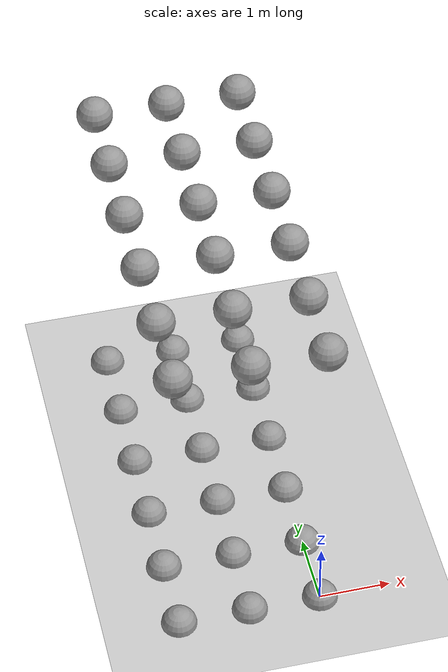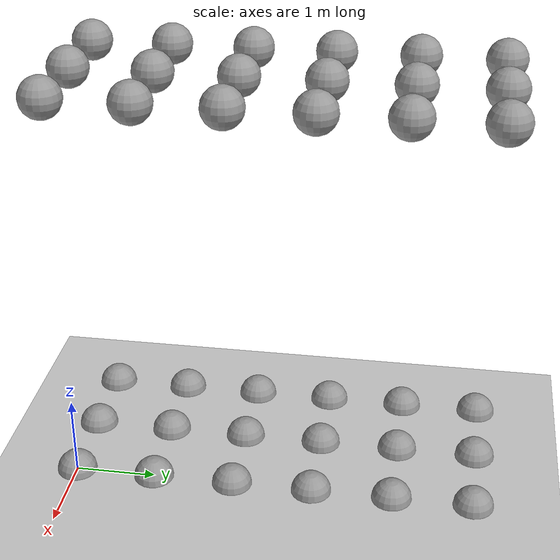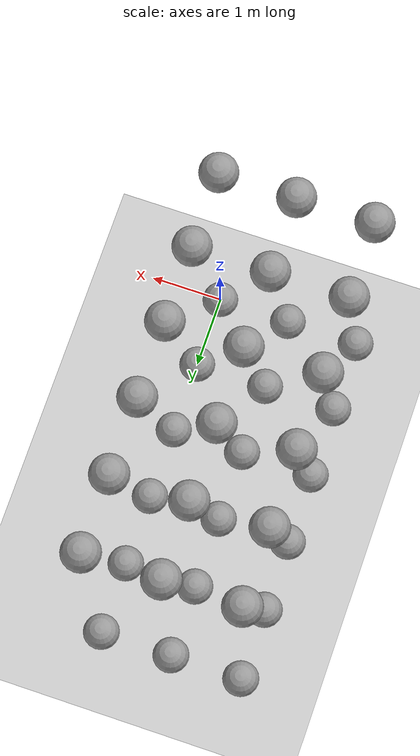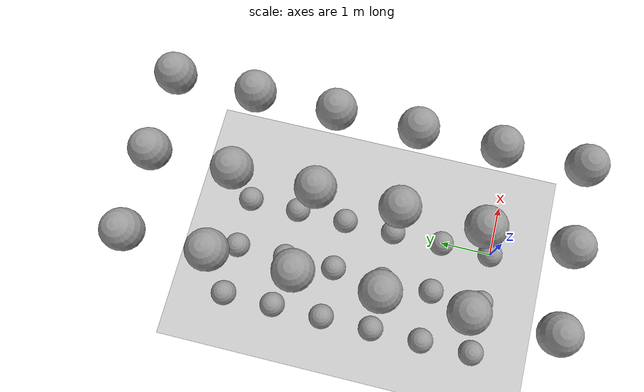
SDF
<?xml version="1.0" ?>
<sdf version="1.4">
  <world name="default">
    <gui fullscreen='0'>
      <camera name='user_camera'>
        <pose>-30 0 0 0 0 0</pose>
      </camera>
    </gui>
    <scene>
      <ambient>0.5 0.5 0.5 1</ambient>
      <background>0.5 0.5 0.5 1</background>
      <shadows>false</shadows>
    </scene>
    <include>
      <uri>model://sun</uri>
    </include>
    <include>
      <uri>model://ground_plane</uri>
    </include>
    <physics type="ode">
      <gravity>0.0 0.0 -6.0</gravity>
      <ode>
        <solver>
          <type>quick</type>
          <iters>50</iters>
          <sor>1.0</sor>
        </solver>
        <constraints>
          <cfm>0.0</cfm>
          <erp>1.0</erp>
          <contact_max_correcting_vel>1000000.0</contact_max_correcting_vel>
          <contact_surface_layer>0.0</contact_surface_layer>
        </constraints>
      </ode>
      <real_time_update_rate>1000.0</real_time_update_rate>
      <max_step_size>0.001</max_step_size>
    </physics>
    <model name="model_max_vel_test">
      <pose>0.0 0.0 0.0 0 0.0 0.0</pose>
      <static>false</static>
      <allow_auto_disable>false</allow_auto_disable>

      <!-- this link has zero max_vel -->
      <link name="link_0">
        <velocity_decay>
          <linear>0.0</linear>
          <angular>0.0</angular>
        </velocity_decay>
        <pose>0.0 0.0 0.0 0.0 0.0 0.0</pose>
        <inertial>
          <pose>0.0 0.0 0.0 0.0 0.0 0.0</pose>
          <inertia>
            <ixx>0.01</ixx>
            <ixy>0.0</ixy>
            <ixz>0.0</ixz>
            <iyy>0.01</iyy>
            <iyz>0.0</iyz>
            <izz>0.01</izz>
          </inertia>
          <mass>10.0</mass>
        </inertial>
        <visual name="visual_sphere">
          <pose>0.0 0.0 0.0 0.0 0.0 0.0</pose>
          <geometry>
            <sphere>
              <radius>0.25</radius>
            </sphere>
          </geometry>
          <material>
            <script><uri>file://media/materials/scripts/gazebo.material</uri><name>Gazebo/Grey</name></script>
          </material>
        </visual>
        <visual name="visual_sphere_2">
          <pose>0.0 0.0 5.0 0.0 0.0 0.0</pose>
          <geometry>
            <sphere>
              <radius>0.25</radius>
            </sphere>
          </geometry>
          <material>
            <script><uri>file://media/materials/scripts/gazebo.material</uri><name>Gazebo/Grey</name></script>
          </material>
        </visual>
        <collision name="collision_sphere">
          <pose>0.0 0.0 0.0 0.0 0.0 0.0</pose>
          <max_contacts>250</max_contacts>
          <geometry>
            <sphere>
              <radius>0.25</radius>
            </sphere>
          </geometry>
          <surface>
            <contact>
              <ode>
                <max_vel>0.0</max_vel>
                <min_depth>0.0</min_depth>
                <kp>40000.0</kp>
                <kd>1.0</kd>
              </ode>
            </contact>
          </surface>
        </collision>
        <gravity>true</gravity>
        <self_collide>true</self_collide>
        <kinematic>false</kinematic>
      </link>

      <link name="link_1">
        <velocity_decay>
          <linear>0.0</linear>
          <angular>0.0</angular>
        </velocity_decay>
        <pose>0.0 1.0 0.0 0.0 0.0 0.0</pose>
        <inertial>
          <pose>0.0 0.0 0.0 0.0 0.0 0.0</pose>
          <inertia>
            <ixx>0.01</ixx>
            <ixy>0.0</ixy>
            <ixz>0.0</ixz>
            <iyy>0.01</iyy>
            <iyz>0.0</iyz>
            <izz>0.01</izz>
          </inertia>
          <mass>10.0</mass>
        </inertial>
        <visual name="visual_sphere">
          <pose>0.0 0.0 0.0 0.0 0.0 0.0</pose>
          <geometry>
            <sphere>
              <radius>0.25</radius>
            </sphere>
          </geometry>
          <material>
            <script><uri>file://media/materials/scripts/gazebo.material</uri><name>Gazebo/Grey</name></script>
          </material>
        </visual>
        <visual name="visual_sphere_2">
          <pose>0.0 0.0 5.0 0.0 0.0 0.0</pose>
          <geometry>
            <sphere>
              <radius>0.25</radius>
            </sphere>
          </geometry>
          <material>
            <script><uri>file://media/materials/scripts/gazebo.material</uri><name>Gazebo/Grey</name></script>
          </material>
        </visual>
        <collision name="collision_sphere">
          <pose>0.0 0.0 0.0 0.0 0.0 0.0</pose>
          <max_contacts>250</max_contacts>
          <geometry>
            <sphere>
              <radius>0.25</radius>
            </sphere>
          </geometry>
          <surface>
            <contact>
              <ode>
                <max_vel>1.0</max_vel>
                <min_depth>0.0</min_depth>
                <kp>40000.0</kp>
                <kd>1.0</kd>
              </ode>
            </contact>
          </surface>
        </collision>
        <gravity>true</gravity>
        <self_collide>true</self_collide>
        <kinematic>false</kinematic>
      </link>

      <!-- max_vel is 2, model should shoot out from interpenetration with maximum velocity of 2.0 -->
      <link name="link_2">
        <velocity_decay>
          <linear>0.0</linear>
          <angular>0.0</angular>
        </velocity_decay>
        <pose>0.0 2.0 0.0 0.0 0.0 0.0</pose>
        <inertial>
          <pose>0.0 0.0 0.0 0.0 0.0 0.0</pose>
          <inertia>
            <ixx>0.01</ixx>
            <ixy>0.0</ixy>
            <ixz>0.0</ixz>
            <iyy>0.01</iyy>
            <iyz>0.0</iyz>
            <izz>0.01</izz>
          </inertia>
          <mass>10.0</mass>
        </inertial>
        <visual name="visual_sphere">
          <pose>0.0 0.0 0.0 0.0 0.0 0.0</pose>
          <geometry>
            <sphere>
              <radius>0.25</radius>
            </sphere>
          </geometry>
          <material>
            <script><uri>file://media/materials/scripts/gazebo.material</uri><name>Gazebo/Grey</name></script>
          </material>
        </visual>
        <visual name="visual_sphere_2">
          <pose>0.0 0.0 5.0 0.0 0.0 0.0</pose>
          <geometry>
            <sphere>
              <radius>0.25</radius>
            </sphere>
          </geometry>
          <material>
            <script><uri>file://media/materials/scripts/gazebo.material</uri><name>Gazebo/Grey</name></script>
          </material>
        </visual>
        <collision name="collision_sphere">
          <pose>0.0 0.0 0.0 0.0 0.0 0.0</pose>
          <max_contacts>250</max_contacts>
          <geometry>
            <sphere>
              <radius>0.25</radius>
            </sphere>
          </geometry>
          <surface>
            <contact>
              <ode>
                <max_vel>2.0</max_vel>
                <min_depth>0.0</min_depth>
                <kp>40000.0</kp>
                <kd>1.0</kd>
              </ode>
            </contact>
          </surface>
        </collision>
        <gravity>true</gravity>
        <self_collide>true</self_collide>
        <kinematic>false</kinematic>
      </link>

      <!-- max_vel is 3, model should shoot out from interpenetration with maximum velocity of 3.0 -->
      <link name="link_3">
        <velocity_decay>
          <linear>0.0</linear>
          <angular>0.0</angular>
        </velocity_decay>
        <pose>0.0 3.0 0.0 0.0 0.0 0.0</pose>
        <inertial>
          <pose>0.0 0.0 0.0 0.0 0.0 0.0</pose>
          <inertia>
            <ixx>0.01</ixx>
            <ixy>0.0</ixy>
            <ixz>0.0</ixz>
            <iyy>0.01</iyy>
            <iyz>0.0</iyz>
            <izz>0.01</izz>
          </inertia>
          <mass>10.0</mass>
        </inertial>
        <visual name="visual_sphere">
          <pose>0.0 0.0 0.0 0.0 0.0 0.0</pose>
          <geometry>
            <sphere>
              <radius>0.25</radius>
            </sphere>
          </geometry>
          <material>
            <script><uri>file://media/materials/scripts/gazebo.material</uri><name>Gazebo/Grey</name></script>
          </material>
        </visual>
        <visual name="visual_sphere_2">
          <pose>0.0 0.0 5.0 0.0 0.0 0.0</pose>
          <geometry>
            <sphere>
              <radius>0.25</radius>
            </sphere>
          </geometry>
          <material>
            <script><uri>file://media/materials/scripts/gazebo.material</uri><name>Gazebo/Grey</name></script>
          </material>
        </visual>
        <collision name="collision_sphere">
          <pose>0.0 0.0 0.0 0.0 0.0 0.0</pose>
          <max_contacts>250</max_contacts>
          <geometry>
            <sphere>
              <radius>0.25</radius>
            </sphere>
          </geometry>
          <surface>
            <contact>
              <ode>
                <max_vel>3.0</max_vel>
                <min_depth>0.0</min_depth>
                <kp>40000.0</kp>
                <kd>1.0</kd>
              </ode>
            </contact>
          </surface>
        </collision>
        <gravity>true</gravity>
        <self_collide>true</self_collide>
        <kinematic>false</kinematic>
      </link>

      <!-- max_vel is 4, model should shoot out from interpenetration with maximum velocity of 4.0 -->
      <link name="link_4">
        <velocity_decay>
          <linear>0.0</linear>
          <angular>0.0</angular>
        </velocity_decay>
        <pose>0.0 4.0 0.0 0.0 0.0 0.0</pose>
        <inertial>
          <pose>0.0 0.0 0.0 0.0 0.0 0.0</pose>
          <inertia>
            <ixx>0.01</ixx>
            <ixy>0.0</ixy>
            <ixz>0.0</ixz>
            <iyy>0.01</iyy>
            <iyz>0.0</iyz>
            <izz>0.01</izz>
          </inertia>
          <mass>10.0</mass>
        </inertial>
        <visual name="visual_sphere">
          <pose>0.0 0.0 0.0 0.0 0.0 0.0</pose>
          <geometry>
            <sphere>
              <radius>0.25</radius>
            </sphere>
          </geometry>
          <material>
            <script><uri>file://media/materials/scripts/gazebo.material</uri><name>Gazebo/Grey</name></script>
          </material>
        </visual>
        <visual name="visual_sphere_2">
          <pose>0.0 0.0 5.0 0.0 0.0 0.0</pose>
          <geometry>
            <sphere>
              <radius>0.25</radius>
            </sphere>
          </geometry>
          <material>
            <script><uri>file://media/materials/scripts/gazebo.material</uri><name>Gazebo/Grey</name></script>
          </material>
        </visual>
        <collision name="collision_sphere">
          <pose>0.0 0.0 0.0 0.0 0.0 0.0</pose>
          <max_contacts>250</max_contacts>
          <geometry>
            <sphere>
              <radius>0.25</radius>
            </sphere>
          </geometry>
          <surface>
            <contact>
              <ode>
                <max_vel>4.0</max_vel>
                <min_depth>0.0</min_depth>
                <kp>40000.0</kp>
                <kd>1.0</kd>
              </ode>
            </contact>
          </surface>
        </collision>
        <gravity>true</gravity>
        <self_collide>true</self_collide>
        <kinematic>false</kinematic>
      </link>

      <!-- max_vel is 5, model should shoot out from interpenetration with maximum velocity of 5.0 -->
      <link name="link_5">
        <velocity_decay>
          <linear>0.0</linear>
          <angular>0.0</angular>
        </velocity_decay>
        <pose>0.0 5.0 0.0 0.0 0.0 0.0</pose>
        <inertial>
          <pose>0.0 0.0 0.0 0.0 0.0 0.0</pose>
          <inertia>
            <ixx>0.01</ixx>
            <ixy>0.0</ixy>
            <ixz>0.0</ixz>
            <iyy>0.01</iyy>
            <iyz>0.0</iyz>
            <izz>0.01</izz>
          </inertia>
          <mass>10.0</mass>
        </inertial>
        <visual name="visual_sphere">
          <pose>0.0 0.0 0.0 0.0 0.0 0.0</pose>
          <geometry>
            <sphere>
              <radius>0.25</radius>
            </sphere>
          </geometry>
          <material>
            <script><uri>file://media/materials/scripts/gazebo.material</uri><name>Gazebo/Grey</name></script>
          </material>
        </visual>
        <visual name="visual_sphere_2">
          <pose>0.0 0.0 5.0 0.0 0.0 0.0</pose>
          <geometry>
            <sphere>
              <radius>0.25</radius>
            </sphere>
          </geometry>
          <material>
            <script><uri>file://media/materials/scripts/gazebo.material</uri><name>Gazebo/Grey</name></script>
          </material>
        </visual>
        <collision name="collision_sphere">
          <pose>0.0 0.0 0.0 0.0 0.0 0.0</pose>
          <max_contacts>250</max_contacts>
          <geometry>
            <sphere>
              <radius>0.25</radius>
            </sphere>
          </geometry>
          <surface>
            <contact>
              <ode>
                <max_vel>5.0</max_vel>
                <min_depth>0.0</min_depth>
                <kp>40000.0</kp>
                <kd>1.0</kd>
              </ode>
            </contact>
          </surface>
        </collision>
        <gravity>true</gravity>
        <self_collide>true</self_collide>
        <kinematic>false</kinematic>
      </link>
    </model>

    <model name="model_max_vel_kp_test">
      <pose>-1.0 0.0 0.0 0 0.0 0.0</pose>
      <static>false</static>
      <allow_auto_disable>false</allow_auto_disable>

      <!-- this link has zero max_vel -->
      <link name="link_0">
        <velocity_decay>
          <linear>0.0</linear>
          <angular>0.0</angular>
        </velocity_decay>
        <pose>0.0 0.0 0.0 0.0 0.0 0.0</pose>
        <inertial>
          <pose>0.0 0.0 0.0 0.0 0.0 0.0</pose>
          <inertia>
            <ixx>0.01</ixx>
            <ixy>0.0</ixy>
            <ixz>0.0</ixz>
            <iyy>0.01</iyy>
            <iyz>0.0</iyz>
            <izz>0.01</izz>
          </inertia>
          <mass>10.0</mass>
        </inertial>
        <visual name="visual_sphere">
          <pose>0.0 0.0 0.0 0.0 0.0 0.0</pose>
          <geometry>
            <sphere>
              <radius>0.25</radius>
            </sphere>
          </geometry>
          <material>
            <script><uri>file://media/materials/scripts/gazebo.material</uri><name>Gazebo/Grey</name></script>
          </material>
        </visual>
        <visual name="visual_sphere_2">
          <pose>0.0 0.0 5.0 0.0 0.0 0.0</pose>
          <geometry>
            <sphere>
              <radius>0.25</radius>
            </sphere>
          </geometry>
          <material>
            <script><uri>file://media/materials/scripts/gazebo.material</uri><name>Gazebo/Grey</name></script>
          </material>
        </visual>
        <collision name="collision_sphere">
          <pose>0.0 0.0 0.0 0.0 0.0 0.0</pose>
          <max_contacts>250</max_contacts>
          <geometry>
            <sphere>
              <radius>0.25</radius>
            </sphere>
          </geometry>
          <surface>
            <contact>
              <ode>
                <max_vel>0.0</max_vel>
                <min_depth>0.0</min_depth>
                <kp>20000.0</kp>
                <kd>1.0</kd>
              </ode>
            </contact>
          </surface>
        </collision>
        <gravity>true</gravity>
        <self_collide>true</self_collide>
        <kinematic>false</kinematic>
      </link>

      <link name="link_1">
        <velocity_decay>
          <linear>0.0</linear>
          <angular>0.0</angular>
        </velocity_decay>
        <pose>0.0 1.0 0.0 0.0 0.0 0.0</pose>
        <inertial>
          <pose>0.0 0.0 0.0 0.0 0.0 0.0</pose>
          <inertia>
            <ixx>0.01</ixx>
            <ixy>0.0</ixy>
            <ixz>0.0</ixz>
            <iyy>0.01</iyy>
            <iyz>0.0</iyz>
            <izz>0.01</izz>
          </inertia>
          <mass>10.0</mass>
        </inertial>
        <visual name="visual_sphere">
          <pose>0.0 0.0 0.0 0.0 0.0 0.0</pose>
          <geometry>
            <sphere>
              <radius>0.25</radius>
            </sphere>
          </geometry>
          <material>
            <script><uri>file://media/materials/scripts/gazebo.material</uri><name>Gazebo/Grey</name></script>
          </material>
        </visual>
        <visual name="visual_sphere_2">
          <pose>0.0 0.0 5.0 0.0 0.0 0.0</pose>
          <geometry>
            <sphere>
              <radius>0.25</radius>
            </sphere>
          </geometry>
          <material>
            <script><uri>file://media/materials/scripts/gazebo.material</uri><name>Gazebo/Grey</name></script>
          </material>
        </visual>
        <collision name="collision_sphere">
          <pose>0.0 0.0 0.0 0.0 0.0 0.0</pose>
          <max_contacts>250</max_contacts>
          <geometry>
            <sphere>
              <radius>0.25</radius>
            </sphere>
          </geometry>
          <surface>
            <contact>
              <ode>
                <max_vel>1.0</max_vel>
                <min_depth>0.0</min_depth>
                <kp>20000.0</kp>
                <kd>1.0</kd>
              </ode>
            </contact>
          </surface>
        </collision>
        <gravity>true</gravity>
        <self_collide>true</self_collide>
        <kinematic>false</kinematic>
      </link>

      <!-- max_vel is 2, model should shoot out from interpenetration with maximum velocity of 2.0 -->
      <link name="link_2">
        <velocity_decay>
          <linear>0.0</linear>
          <angular>0.0</angular>
        </velocity_decay>
        <pose>0.0 2.0 0.0 0.0 0.0 0.0</pose>
        <inertial>
          <pose>0.0 0.0 0.0 0.0 0.0 0.0</pose>
          <inertia>
            <ixx>0.01</ixx>
            <ixy>0.0</ixy>
            <ixz>0.0</ixz>
            <iyy>0.01</iyy>
            <iyz>0.0</iyz>
            <izz>0.01</izz>
          </inertia>
          <mass>10.0</mass>
        </inertial>
        <visual name="visual_sphere">
          <pose>0.0 0.0 0.0 0.0 0.0 0.0</pose>
          <geometry>
            <sphere>
              <radius>0.25</radius>
            </sphere>
          </geometry>
          <material>
            <script><uri>file://media/materials/scripts/gazebo.material</uri><name>Gazebo/Grey</name></script>
          </material>
        </visual>
        <visual name="visual_sphere_2">
          <pose>0.0 0.0 5.0 0.0 0.0 0.0</pose>
          <geometry>
            <sphere>
              <radius>0.25</radius>
            </sphere>
          </geometry>
          <material>
            <script><uri>file://media/materials/scripts/gazebo.material</uri><name>Gazebo/Grey</name></script>
          </material>
        </visual>
        <collision name="collision_sphere">
          <pose>0.0 0.0 0.0 0.0 0.0 0.0</pose>
          <max_contacts>250</max_contacts>
          <geometry>
            <sphere>
              <radius>0.25</radius>
            </sphere>
          </geometry>
          <surface>
            <contact>
              <ode>
                <max_vel>2.0</max_vel>
                <min_depth>0.0</min_depth>
                <kp>20000.0</kp>
                <kd>1.0</kd>
              </ode>
            </contact>
          </surface>
        </collision>
        <gravity>true</gravity>
        <self_collide>true</self_collide>
        <kinematic>false</kinematic>
      </link>

      <!-- max_vel is 3, model should shoot out from interpenetration with maximum velocity of 3.0 -->
      <link name="link_3">
        <velocity_decay>
          <linear>0.0</linear>
          <angular>0.0</angular>
        </velocity_decay>
        <pose>0.0 3.0 0.0 0.0 0.0 0.0</pose>
        <inertial>
          <pose>0.0 0.0 0.0 0.0 0.0 0.0</pose>
          <inertia>
            <ixx>0.01</ixx>
            <ixy>0.0</ixy>
            <ixz>0.0</ixz>
            <iyy>0.01</iyy>
            <iyz>0.0</iyz>
            <izz>0.01</izz>
          </inertia>
          <mass>10.0</mass>
        </inertial>
        <visual name="visual_sphere">
          <pose>0.0 0.0 0.0 0.0 0.0 0.0</pose>
          <geometry>
            <sphere>
              <radius>0.25</radius>
            </sphere>
          </geometry>
          <material>
            <script><uri>file://media/materials/scripts/gazebo.material</uri><name>Gazebo/Grey</name></script>
          </material>
        </visual>
        <visual name="visual_sphere_2">
          <pose>0.0 0.0 5.0 0.0 0.0 0.0</pose>
          <geometry>
            <sphere>
              <radius>0.25</radius>
            </sphere>
          </geometry>
          <material>
            <script><uri>file://media/materials/scripts/gazebo.material</uri><name>Gazebo/Grey</name></script>
          </material>
        </visual>
        <collision name="collision_sphere">
          <pose>0.0 0.0 0.0 0.0 0.0 0.0</pose>
          <max_contacts>250</max_contacts>
          <geometry>
            <sphere>
              <radius>0.25</radius>
            </sphere>
          </geometry>
          <surface>
            <contact>
              <ode>
                <max_vel>3.0</max_vel>
                <min_depth>0.0</min_depth>
                <kp>20000.0</kp>
                <kd>1.0</kd>
              </ode>
            </contact>
          </surface>
        </collision>
        <gravity>true</gravity>
        <self_collide>true</self_collide>
        <kinematic>false</kinematic>
      </link>

      <!-- max_vel is 4, model should shoot out from interpenetration with maximum velocity of 4.0 -->
      <link name="link_4">
        <velocity_decay>
          <linear>0.0</linear>
          <angular>0.0</angular>
        </velocity_decay>
        <pose>0.0 4.0 0.0 0.0 0.0 0.0</pose>
        <inertial>
          <pose>0.0 0.0 0.0 0.0 0.0 0.0</pose>
          <inertia>
            <ixx>0.01</ixx>
            <ixy>0.0</ixy>
            <ixz>0.0</ixz>
            <iyy>0.01</iyy>
            <iyz>0.0</iyz>
            <izz>0.01</izz>
          </inertia>
          <mass>10.0</mass>
        </inertial>
        <visual name="visual_sphere">
          <pose>0.0 0.0 0.0 0.0 0.0 0.0</pose>
          <geometry>
            <sphere>
              <radius>0.25</radius>
            </sphere>
          </geometry>
          <material>
            <script><uri>file://media/materials/scripts/gazebo.material</uri><name>Gazebo/Grey</name></script>
          </material>
        </visual>
        <visual name="visual_sphere_2">
          <pose>0.0 0.0 5.0 0.0 0.0 0.0</pose>
          <geometry>
            <sphere>
              <radius>0.25</radius>
            </sphere>
          </geometry>
          <material>
            <script><uri>file://media/materials/scripts/gazebo.material</uri><name>Gazebo/Grey</name></script>
          </material>
        </visual>
        <collision name="collision_sphere">
          <pose>0.0 0.0 0.0 0.0 0.0 0.0</pose>
          <max_contacts>250</max_contacts>
          <geometry>
            <sphere>
              <radius>0.25</radius>
            </sphere>
          </geometry>
          <surface>
            <contact>
              <ode>
                <max_vel>4.0</max_vel>
                <min_depth>0.0</min_depth>
                <kp>20000.0</kp>
                <kd>1.0</kd>
              </ode>
            </contact>
          </surface>
        </collision>
        <gravity>true</gravity>
        <self_collide>true</self_collide>
        <kinematic>false</kinematic>
      </link>

      <!-- max_vel is 5, model should shoot out from interpenetration with maximum velocity of 5.0 -->
      <link name="link_5">
        <velocity_decay>
          <linear>0.0</linear>
          <angular>0.0</angular>
        </velocity_decay>
        <pose>0.0 5.0 0.0 0.0 0.0 0.0</pose>
        <inertial>
          <pose>0.0 0.0 0.0 0.0 0.0 0.0</pose>
          <inertia>
            <ixx>0.01</ixx>
            <ixy>0.0</ixy>
            <ixz>0.0</ixz>
            <iyy>0.01</iyy>
            <iyz>0.0</iyz>
            <izz>0.01</izz>
          </inertia>
          <mass>10.0</mass>
        </inertial>
        <visual name="visual_sphere">
          <pose>0.0 0.0 0.0 0.0 0.0 0.0</pose>
          <geometry>
            <sphere>
              <radius>0.25</radius>
            </sphere>
          </geometry>
          <material>
            <script><uri>file://media/materials/scripts/gazebo.material</uri><name>Gazebo/Grey</name></script>
          </material>
        </visual>
        <visual name="visual_sphere_2">
          <pose>0.0 0.0 5.0 0.0 0.0 0.0</pose>
          <geometry>
            <sphere>
              <radius>0.25</radius>
            </sphere>
          </geometry>
          <material>
            <script><uri>file://media/materials/scripts/gazebo.material</uri><name>Gazebo/Grey</name></script>
          </material>
        </visual>
        <collision name="collision_sphere">
          <pose>0.0 0.0 0.0 0.0 0.0 0.0</pose>
          <max_contacts>250</max_contacts>
          <geometry>
            <sphere>
              <radius>0.25</radius>
            </sphere>
          </geometry>
          <surface>
            <contact>
              <ode>
                <max_vel>5.0</max_vel>
                <min_depth>0.0</min_depth>
                <kp>20000.0</kp>
                <kd>1.0</kd>
              </ode>
            </contact>
          </surface>
        </collision>
        <gravity>true</gravity>
        <self_collide>true</self_collide>
        <kinematic>false</kinematic>
      </link>
    </model>

    <model name="model_max_vel_kp_2_test">
      <pose>-2.0 0.0 0.0 0 0.0 0.0</pose>
      <static>false</static>
      <allow_auto_disable>false</allow_auto_disable>

      <!-- this link has zero max_vel -->
      <link name="link_0">
        <velocity_decay>
          <linear>0.0</linear>
          <angular>0.0</angular>
        </velocity_decay>
        <pose>0.0 0.0 0.0 0.0 0.0 0.0</pose>
        <inertial>
          <pose>0.0 0.0 0.0 0.0 0.0 0.0</pose>
          <inertia>
            <ixx>0.01</ixx>
            <ixy>0.0</ixy>
            <ixz>0.0</ixz>
            <iyy>0.01</iyy>
            <iyz>0.0</iyz>
            <izz>0.01</izz>
          </inertia>
          <mass>10.0</mass>
        </inertial>
        <visual name="visual_sphere">
          <pose>0.0 0.0 0.0 0.0 0.0 0.0</pose>
          <geometry>
            <sphere>
              <radius>0.25</radius>
            </sphere>
          </geometry>
          <material>
            <script><uri>file://media/materials/scripts/gazebo.material</uri><name>Gazebo/Grey</name></script>
          </material>
        </visual>
        <visual name="visual_sphere_2">
          <pose>0.0 0.0 5.0 0.0 0.0 0.0</pose>
          <geometry>
            <sphere>
              <radius>0.25</radius>
            </sphere>
          </geometry>
          <material>
            <script><uri>file://media/materials/scripts/gazebo.material</uri><name>Gazebo/Grey</name></script>
          </material>
        </visual>
        <collision name="collision_sphere">
          <pose>0.0 0.0 0.0 0.0 0.0 0.0</pose>
          <max_contacts>250</max_contacts>
          <geometry>
            <sphere>
              <radius>0.25</radius>
            </sphere>
          </geometry>
          <surface>
            <contact>
              <ode>
                <max_vel>0.0</max_vel>
                <min_depth>0.0</min_depth>
                <kp>10000.0</kp>
                <kd>1.0</kd>
              </ode>
            </contact>
          </surface>
        </collision>
        <gravity>true</gravity>
        <self_collide>true</self_collide>
        <kinematic>false</kinematic>
      </link>

      <link name="link_1">
        <velocity_decay>
          <linear>0.0</linear>
          <angular>0.0</angular>
        </velocity_decay>
        <pose>0.0 1.0 0.0 0.0 0.0 0.0</pose>
        <inertial>
          <pose>0.0 0.0 0.0 0.0 0.0 0.0</pose>
          <inertia>
            <ixx>0.01</ixx>
            <ixy>0.0</ixy>
            <ixz>0.0</ixz>
            <iyy>0.01</iyy>
            <iyz>0.0</iyz>
            <izz>0.01</izz>
          </inertia>
          <mass>10.0</mass>
        </inertial>
        <visual name="visual_sphere">
          <pose>0.0 0.0 0.0 0.0 0.0 0.0</pose>
          <geometry>
            <sphere>
              <radius>0.25</radius>
            </sphere>
          </geometry>
          <material>
            <script><uri>file://media/materials/scripts/gazebo.material</uri><name>Gazebo/Grey</name></script>
          </material>
        </visual>
        <visual name="visual_sphere_2">
          <pose>0.0 0.0 5.0 0.0 0.0 0.0</pose>
          <geometry>
            <sphere>
              <radius>0.25</radius>
            </sphere>
          </geometry>
          <material>
            <script><uri>file://media/materials/scripts/gazebo.material</uri><name>Gazebo/Grey</name></script>
          </material>
        </visual>
        <collision name="collision_sphere">
          <pose>0.0 0.0 0.0 0.0 0.0 0.0</pose>
          <max_contacts>250</max_contacts>
          <geometry>
            <sphere>
              <radius>0.25</radius>
            </sphere>
          </geometry>
          <surface>
            <contact>
              <ode>
                <max_vel>1.0</max_vel>
                <min_depth>0.0</min_depth>
                <kp>10000.0</kp>
                <kd>1.0</kd>
              </ode>
            </contact>
          </surface>
        </collision>
        <gravity>true</gravity>
        <self_collide>true</self_collide>
        <kinematic>false</kinematic>
      </link>

      <link name="link_2">
        <velocity_decay>
          <linear>0.0</linear>
          <angular>0.0</angular>
        </velocity_decay>
        <pose>0.0 2.0 0.0 0.0 0.0 0.0</pose>
        <inertial>
          <pose>0.0 0.0 0.0 0.0 0.0 0.0</pose>
          <inertia>
            <ixx>0.01</ixx>
            <ixy>0.0</ixy>
            <ixz>0.0</ixz>
            <iyy>0.01</iyy>
            <iyz>0.0</iyz>
            <izz>0.01</izz>
          </inertia>
          <mass>10.0</mass>
        </inertial>
        <visual name="visual_sphere">
          <pose>0.0 0.0 0.0 0.0 0.0 0.0</pose>
          <geometry>
            <sphere>
              <radius>0.25</radius>
            </sphere>
          </geometry>
          <material>
            <script><uri>file://media/materials/scripts/gazebo.material</uri><name>Gazebo/Grey</name></script>
          </material>
        </visual>
        <visual name="visual_sphere_2">
          <pose>0.0 0.0 5.0 0.0 0.0 0.0</pose>
          <geometry>
            <sphere>
              <radius>0.25</radius>
            </sphere>
          </geometry>
          <material>
            <script><uri>file://media/materials/scripts/gazebo.material</uri><name>Gazebo/Grey</name></script>
          </material>
        </visual>
        <collision name="collision_sphere">
          <pose>0.0 0.0 0.0 0.0 0.0 0.0</pose>
          <max_contacts>250</max_contacts>
          <geometry>
            <sphere>
              <radius>0.25</radius>
            </sphere>
          </geometry>
          <surface>
            <contact>
              <ode>
                <max_vel>2.0</max_vel>
                <min_depth>0.0</min_depth>
                <kp>10000.0</kp>
                <kd>1.0</kd>
              </ode>
            </contact>
          </surface>
        </collision>
        <gravity>true</gravity>
        <self_collide>true</self_collide>
        <kinematic>false</kinematic>
      </link>

      <link name="link_3">
        <velocity_decay>
          <linear>0.0</linear>
          <angular>0.0</angular>
        </velocity_decay>
        <pose>0.0 3.0 0.0 0.0 0.0 0.0</pose>
        <inertial>
          <pose>0.0 0.0 0.0 0.0 0.0 0.0</pose>
          <inertia>
            <ixx>0.01</ixx>
            <ixy>0.0</ixy>
            <ixz>0.0</ixz>
            <iyy>0.01</iyy>
            <iyz>0.0</iyz>
            <izz>0.01</izz>
          </inertia>
          <mass>10.0</mass>
        </inertial>
        <visual name="visual_sphere">
          <pose>0.0 0.0 0.0 0.0 0.0 0.0</pose>
          <geometry>
            <sphere>
              <radius>0.25</radius>
            </sphere>
          </geometry>
          <material>
            <script><uri>file://media/materials/scripts/gazebo.material</uri><name>Gazebo/Grey</name></script>
          </material>
        </visual>
        <visual name="visual_sphere_2">
          <pose>0.0 0.0 5.0 0.0 0.0 0.0</pose>
          <geometry>
            <sphere>
              <radius>0.25</radius>
            </sphere>
          </geometry>
          <material>
            <script><uri>file://media/materials/scripts/gazebo.material</uri><name>Gazebo/Grey</name></script>
          </material>
        </visual>
        <collision name="collision_sphere">
          <pose>0.0 0.0 0.0 0.0 0.0 0.0</pose>
          <max_contacts>250</max_contacts>
          <geometry>
            <sphere>
              <radius>0.25</radius>
            </sphere>
          </geometry>
          <surface>
            <contact>
              <ode>
                <max_vel>3.0</max_vel>
                <min_depth>0.0</min_depth>
                <kp>10000.0</kp>
                <kd>1.0</kd>
              </ode>
            </contact>
          </surface>
        </collision>
        <gravity>true</gravity>
        <self_collide>true</self_collide>
        <kinematic>false</kinematic>
      </link>

      <link name="link_4">
        <velocity_decay>
          <linear>0.0</linear>
          <angular>0.0</angular>
        </velocity_decay>
        <pose>0.0 4.0 0.0 0.0 0.0 0.0</pose>
        <inertial>
          <pose>0.0 0.0 0.0 0.0 0.0 0.0</pose>
          <inertia>
            <ixx>0.01</ixx>
            <ixy>0.0</ixy>
            <ixz>0.0</ixz>
            <iyy>0.01</iyy>
            <iyz>0.0</iyz>
            <izz>0.01</izz>
          </inertia>
          <mass>10.0</mass>
        </inertial>
        <visual name="visual_sphere">
          <pose>0.0 0.0 0.0 0.0 0.0 0.0</pose>
          <geometry>
            <sphere>
              <radius>0.25</radius>
            </sphere>
          </geometry>
          <material>
            <script><uri>file://media/materials/scripts/gazebo.material</uri><name>Gazebo/Grey</name></script>
          </material>
        </visual>
        <visual name="visual_sphere_2">
          <pose>0.0 0.0 5.0 0.0 0.0 0.0</pose>
          <geometry>
            <sphere>
              <radius>0.25</radius>
            </sphere>
          </geometry>
          <material>
            <script><uri>file://media/materials/scripts/gazebo.material</uri><name>Gazebo/Grey</name></script>
          </material>
        </visual>
        <collision name="collision_sphere">
          <pose>0.0 0.0 0.0 0.0 0.0 0.0</pose>
          <max_contacts>250</max_contacts>
          <geometry>
            <sphere>
              <radius>0.25</radius>
            </sphere>
          </geometry>
          <surface>
            <contact>
              <ode>
                <max_vel>4.0</max_vel>
                <min_depth>0.0</min_depth>
                <kp>10000.0</kp>
                <kd>1.0</kd>
              </ode>
            </contact>
          </surface>
        </collision>
        <gravity>true</gravity>
        <self_collide>true</self_collide>
        <kinematic>false</kinematic>
      </link>

      <link name="link_5">
        <velocity_decay>
          <linear>0.0</linear>
          <angular>0.0</angular>
        </velocity_decay>
        <pose>0.0 5.0 0.0 0.0 0.0 0.0</pose>
        <inertial>
          <pose>0.0 0.0 0.0 0.0 0.0 0.0</pose>
          <inertia>
            <ixx>0.01</ixx>
            <ixy>0.0</ixy>
            <ixz>0.0</ixz>
            <iyy>0.01</iyy>
            <iyz>0.0</iyz>
            <izz>0.01</izz>
          </inertia>
          <mass>10.0</mass>
        </inertial>
        <visual name="visual_sphere">
          <pose>0.0 0.0 0.0 0.0 0.0 0.0</pose>
          <geometry>
            <sphere>
              <radius>0.25</radius>
            </sphere>
          </geometry>
          <material>
            <script><uri>file://media/materials/scripts/gazebo.material</uri><name>Gazebo/Grey</name></script>
          </material>
        </visual>
        <visual name="visual_sphere_2">
          <pose>0.0 0.0 5.0 0.0 0.0 0.0</pose>
          <geometry>
            <sphere>
              <radius>0.25</radius>
            </sphere>
          </geometry>
          <material>
            <script><uri>file://media/materials/scripts/gazebo.material</uri><name>Gazebo/Grey</name></script>
          </material>
        </visual>
        <collision name="collision_sphere">
          <pose>0.0 0.0 0.0 0.0 0.0 0.0</pose>
          <max_contacts>250</max_contacts>
          <geometry>
            <sphere>
              <radius>0.25</radius>
            </sphere>
          </geometry>
          <surface>
            <contact>
              <ode>
                <max_vel>5.0</max_vel>
                <min_depth>0.0</min_depth>
                <kp>10000.0</kp>
                <kd>1.0</kd>
              </ode>
            </contact>
          </surface>
        </collision>
        <gravity>true</gravity>
        <self_collide>true</self_collide>
        <kinematic>false</kinematic>
      </link>
    </model>

  </world>
</sdf>
